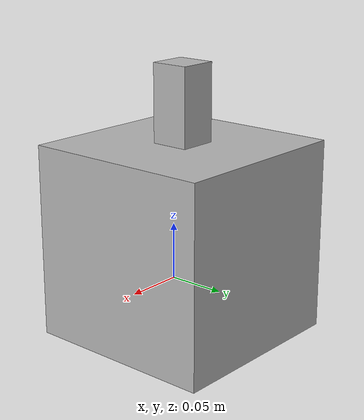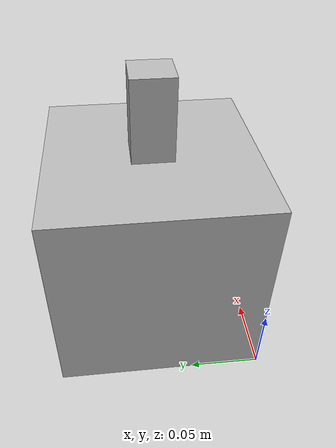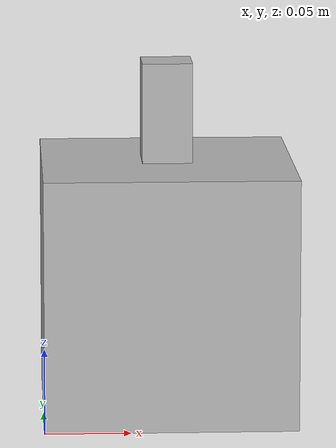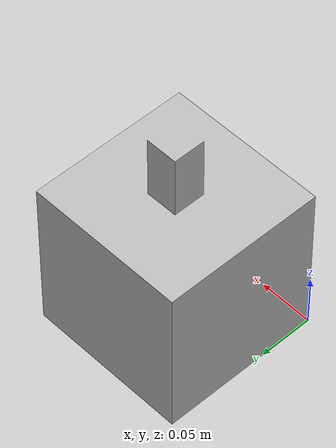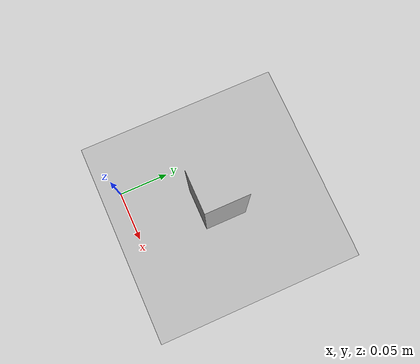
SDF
<?xml version="1.0" ?>
<sdf version="1.7">
  <model name="my1stmodel">
    <static>false</static>

    <link name="box">
      <collision name="collision">
        <geometry>
          <mesh>
            <uri>model://assembly_box/lacaja.stl</uri>
            <scale>0.015 0.015 0.015</scale>
        </mesh>
        </geometry>
        <surface>
          <friction>
            <ode>
              <mu>100</mu>
              <mu2>50</mu2>
            </ode>
          </friction>
        </surface>
      </collision>
      <visual name="visual">
        <geometry>
          <mesh>
            <uri>model://assembly_box/lacaja.stl</uri>
            <scale>0.015 0.015 0.015</scale>
          </mesh>
        </geometry>
              </visual>
    </link>

  </model>
</sdf>
